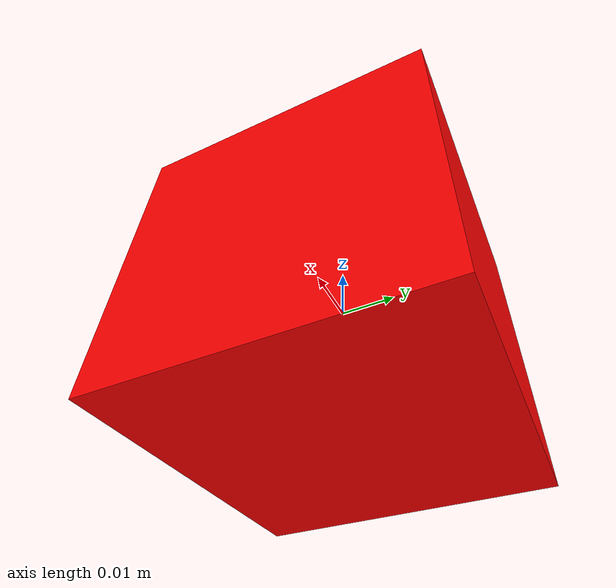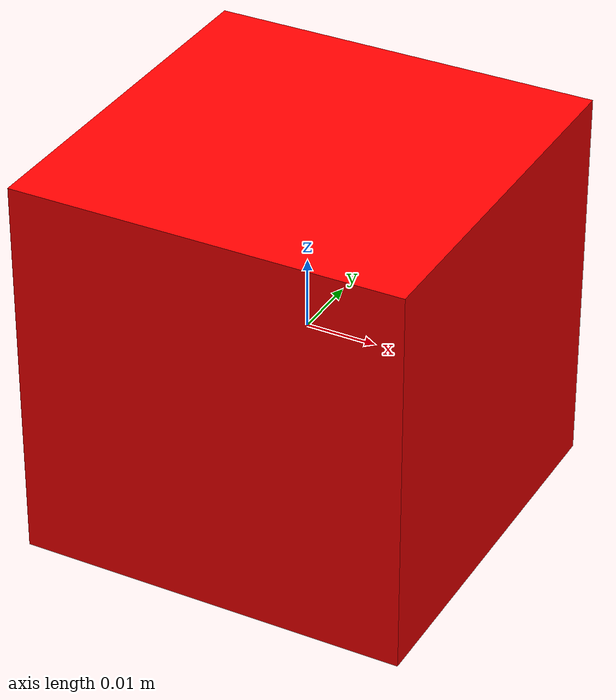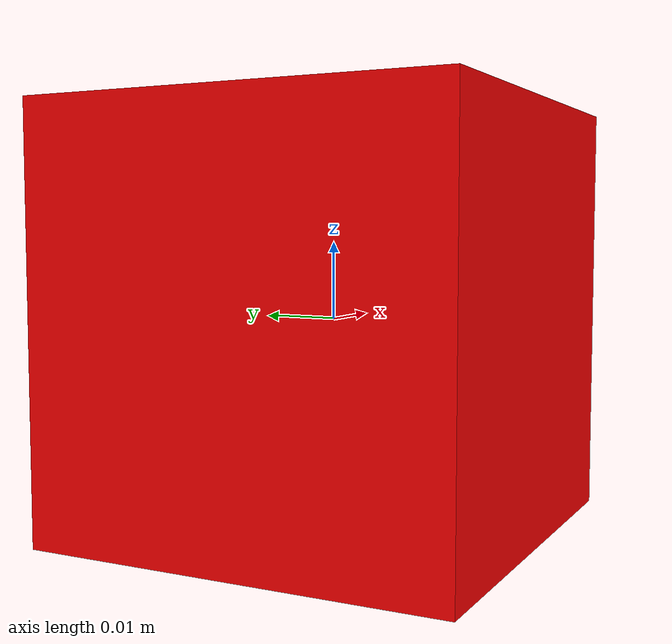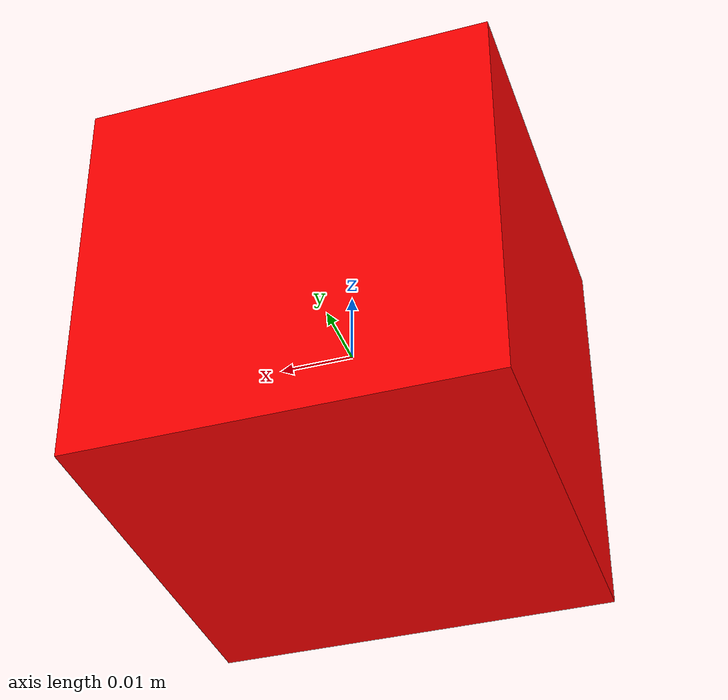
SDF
<?xml version="1.0" ?>
<sdf version="1.6">
  <model name="red_cube">
    <static>false</static>
    <link name="link">
      <inertial>
        <mass>0.001</mass>
        <inertia>
          <ixx>0.0000005</ixx>
          <ixy>0.0000005</ixy>
          <ixz>0.0000005</ixz>
          <iyy>0.0000005</iyy>
          <iyz>0.0000005</iyz>
          <izz>0.0000005</izz>
        </inertia>
      </inertial>
      <collision name="collision">
        <geometry>
          <box>
            <size>0.055 0.055 0.055</size>
          </box>
        </geometry>
        <surface>
          <friction>
            <ode>
              <mu>50.0</mu>
              <mu2>50.0</mu2>
              <fdir1>0 0 0</fdir1>
              <slip1>0.0</slip1>
              <slip2>0.0</slip2>
            </ode>
            <torsional>
              <coefficient>0.8</coefficient>
              <use_patch_radius>true</use_patch_radius>
              <patch_radius>0.0</patch_radius>
              <surface_radius>0.0</surface_radius>
              <ode>
                <slip>0.0</slip>
              </ode>
            </torsional>
          </friction>
          <contact>
            <collide_without_contact>false</collide_without_contact>
            <collide_without_contact_bitmask>1</collide_without_contact_bitmask>
            <collide_bitmask>1</collide_bitmask>
            <ode>
              <soft_cfm>0.00001</soft_cfm>
              <soft_erp>0.2</soft_erp>
              <kp>10000</kp>
              <kd>10</kd>
              <max_vel>0.01</max_vel>
              <min_depth>0</min_depth>
            </ode>
          </contact>
          <bounce>
            <restitution_coefficient>0</restitution_coefficient>
            <threshold>1e+06</threshold>
          </bounce>
        </surface>
      </collision>
      <visual name="visual">
        <geometry>
          <box>
            <size>0.055 0.055 0.055</size>
          </box>
        </geometry>
        <material>
          <ambient>1 0 0 1</ambient>
          <diffuse>1 0 0 1</diffuse>
          <specular>0.1 0.1 0.1 1</specular>
          <emissive>0 0 0 0</emissive>
        </material>
      </visual>
    </link>
  </model>
</sdf>
